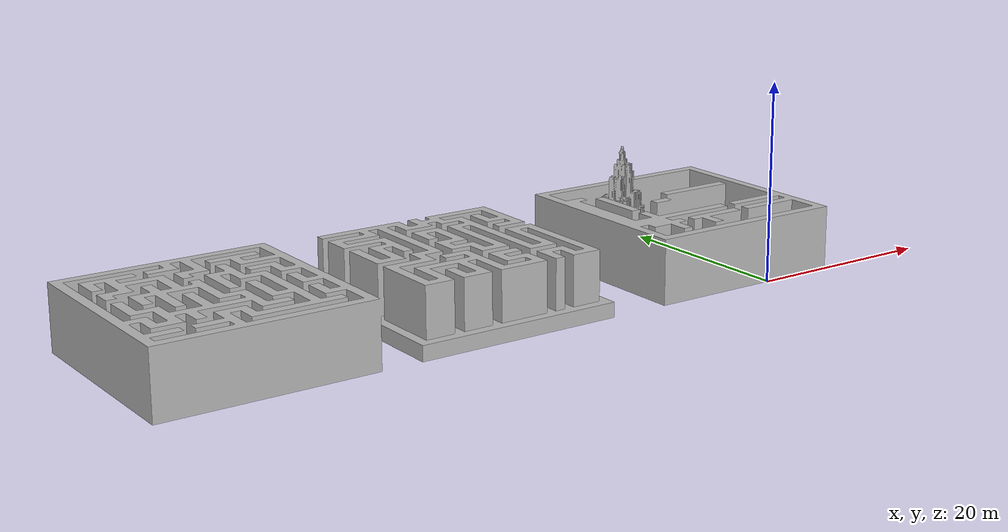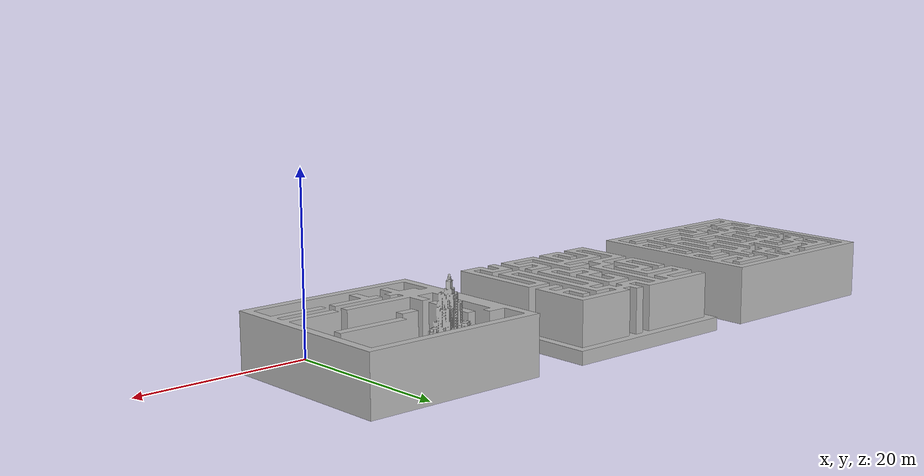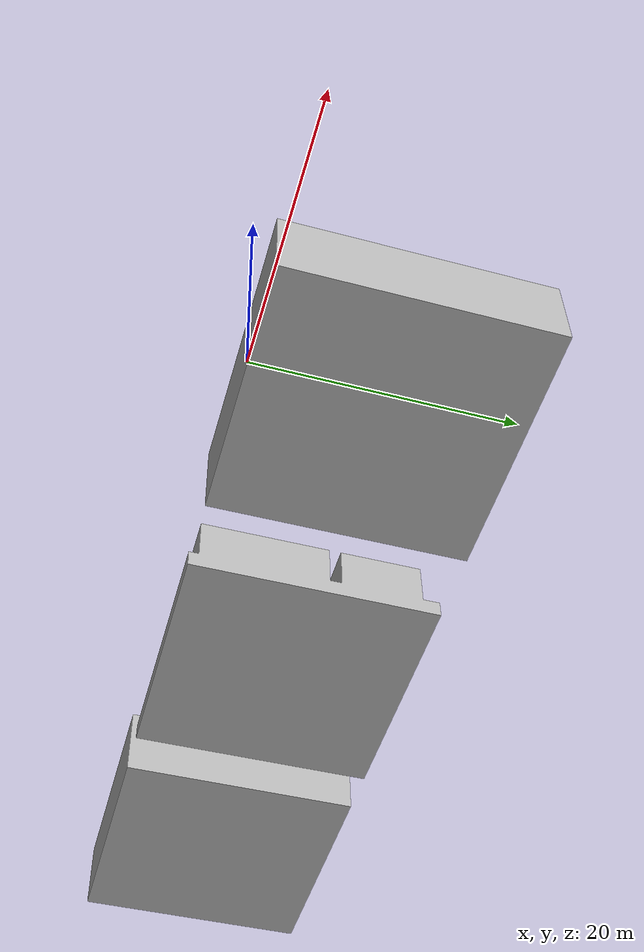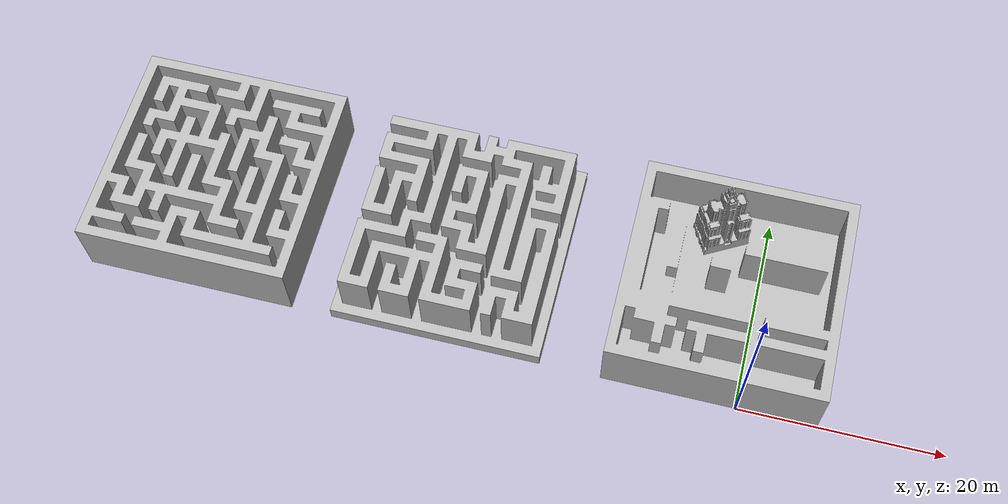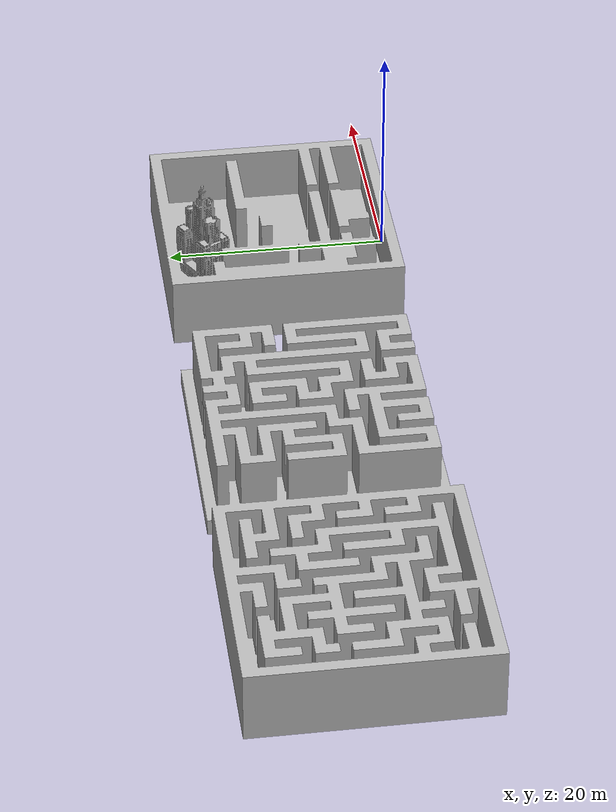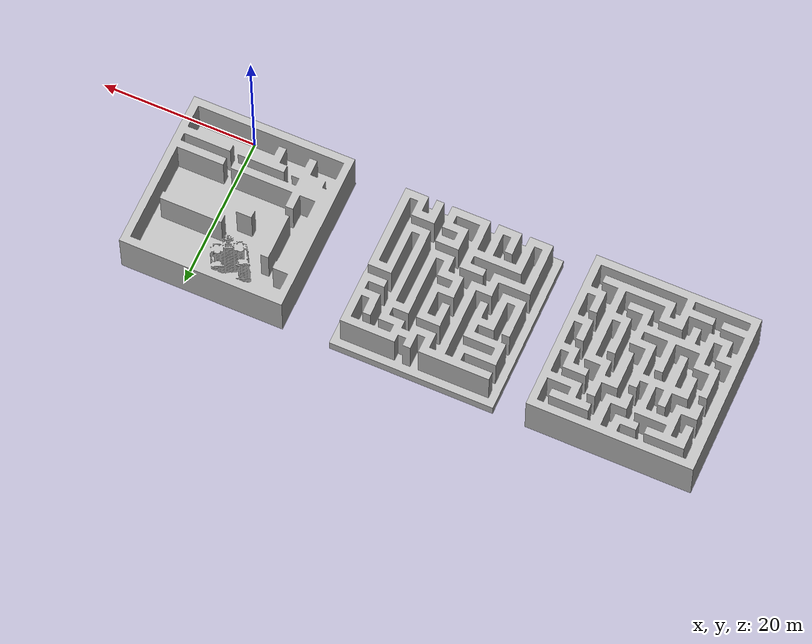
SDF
<?xml version='1.0' ?><sdf version='1.6'><model name='example'><static>true</static><link name='link'><pose>0 0 0 0 0 0</pose><collision name='collision'><geometry><mesh><uri>model://example/example.stl</uri></mesh></geometry></collision><visual name='visual'><geometry><mesh><uri>model://example/example.stl</uri></mesh></geometry></visual></link></model></sdf>
